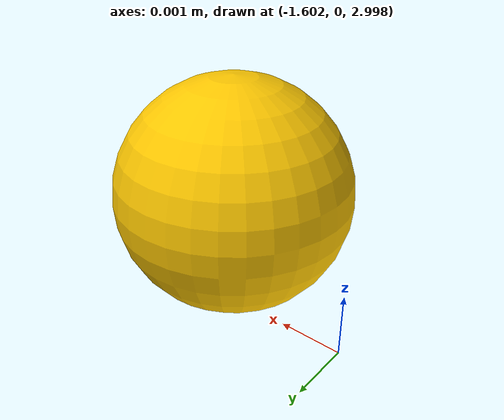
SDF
<?xml version="1.0" ?>
<sdf version="1.5">
  <model name="ball">
    <static>false</static>
    <link name="soccer_ball_link">
      <pose>-1.6 0 3 0 0 0</pose>
      <inertial>
        <mass>1</mass>
        <!-- inertia based on solid sphere 2/5 mr^2 -->
        <inertia>
          <ixx>0.0392</ixx>
          <iyy>0.0392</iyy>
          <izz>0.0392</izz>
          <ixy>0</ixy>
          <ixz>0</ixz>
          <iyz>0</iyz>
        </inertia>
      </inertial>
      <collision name="collision">
        <geometry>
            <box>
              <size>0.105 0.105 0.18</size>
            </box>
        </geometry>
        <surface>
          <friction>
            <ode>
              <mu>1</mu>
              <mu2>1</mu2>
              <kp>100000000.0</kp>
              <kd>1.0</kd>
              <fdir1>0 0 0</fdir1>
              <slip1>0</slip1>
              <slip2>0</slip2>
            </ode>
          </friction>
        </surface>
      </collision>
      <visual name="visual">
        <geometry>
          <mesh>
            <scale>0.08 0.08 0.08</scale>
            <uri>model://ball/ball.dae</uri>
          </mesh>
        </geometry>
      </visual>
    </link>
  </model>
</sdf>
